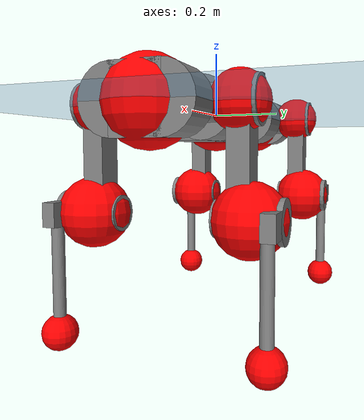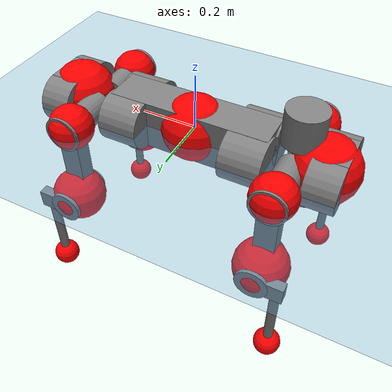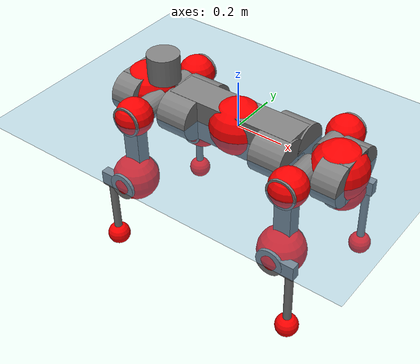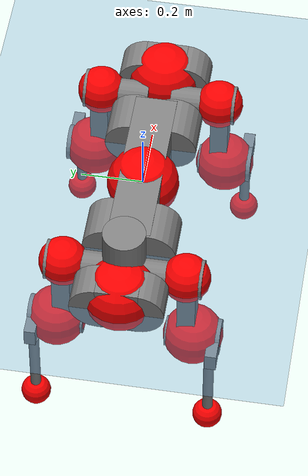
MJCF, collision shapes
<mujoco model="anymal_c">
  <compiler angle="radian" assetdir="assets" balanceinertia="true" inertiafromgeom="false"/>

  <option timestep="0.005" density="1.2" viscosity="2e-05"/>

  <size nkey="1"/>

  <visual>
    <quality shadowsize="8192"/>
    <map shadowclip="0.5"/>
  </visual>

  <default>
    <default class="/">
      <material specular="0" shininess="0.25"/>
      <geom contype="0" conaffinity="0" group="1" solref="-1000 -80"/>
      <site size="0.01 0.005 0.005" group="5"/>
      <general forcelimited="true" forcerange="-80 80" biastype="affine" gainprm="80" biasprm="0 -80 -2"/>
      <default class="anymal_c">
        <joint armature="0.01" damping="0.01" frictionloss="0.1"/>
        <default class="visual">
          <geom type="mesh" group="2"/>
          <default class="visual_zflip"/>
        </default>
        <default class="collision">
          <geom type="cylinder" group="3"/>
          <default class="foot">
            <geom size="0.03 0 0" type="sphere" condim="6" priority="1" friction="0.8 0.02 0.01" solimp="0.015 1 0.03"/>
          </default>
        </default>
      </default>
      <default class="reward_collision_sphere">
        <geom group="5" rgba="1 0 0 1"/>
      </default>
    </default>
  </default>

  <asset>
    <texture type="skybox" colorspace="auto" name="//unnamed_texture_0" builtin="gradient" rgb1="0.95 0.95 0.95" rgb2="0.95 0.95 0.95" width="100" height="600"/>
    <texture type="2d" colorspace="auto" name="texplane" builtin="checker" rgb1="0.345 0.575 0.748" rgb2="0.345 0.575 0.748" markrgb="1 1 1" width="512" height="512"/>
    <texture type="2d" colorspace="linear" name="base" file="base.png"/>
    <texture type="2d" colorspace="linear" name="top_shell" file="top_shell.png"/>
    <texture type="2d" colorspace="linear" name="bottom_shell" file="bottom_shell.png"/>
    <texture type="2d" colorspace="linear" name="remote" file="remote.png"/>
    <texture type="2d" colorspace="linear" name="hatch" file="hatch.png"/>
    <texture type="2d" colorspace="linear" name="handle" file="handle.png"/>
    <texture type="2d" colorspace="linear" name="face" file="face.png"/>
    <texture type="2d" colorspace="linear" name="battery" file="battery.png"/>
    <texture type="2d" colorspace="linear" name="lidar_cage" file="lidar_cage.png"/>
    <texture type="2d" colorspace="linear" name="depth_camera" file="depth_camera.png"/>
    <texture type="2d" colorspace="linear" name="wide_angle_camera" file="wide_angle_camera.png"/>
    <texture type="2d" colorspace="linear" name="lidar" file="lidar.png"/>
    <texture type="2d" colorspace="linear" name="drive" file="drive.png"/>
    <texture type="2d" colorspace="linear" name="hip_l" file="hip_l.png"/>
    <texture type="2d" colorspace="linear" name="shank_l" file="shank_l.png"/>
    <texture type="2d" colorspace="linear" name="foot" file="foot.png"/>
    <texture type="2d" colorspace="linear" name="thigh" file="thigh.png"/>
    <texture type="2d" colorspace="linear" name="shank_r" file="shank_r.png"/>
    <texture type="2d" colorspace="linear" name="hip_r" file="hip_r.png"/>
    <material name="MatPlane" class="/" texture="texplane" texuniform="true" texrepeat="2 2" specular="0.9" shininess="0.5"/>
    <material name="black_plastic" class="/" rgba="0.007 0.007 0.007 1"/>
    <material name="green" class="/" rgba="0.052 0.178 0.033 1"/>
    <material name="red" class="/" rgba="0.178 0.006 0.005 1"/>
    <material name="yellow" class="/" rgba="0.178 0.119 0.006 1"/>
    <material name="lwl" class="/" rgba="0.8 0.8 0.8 1"/>
    <material name="base" class="/" texture="base"/>
    <material name="top_shell" class="/" texture="top_shell"/>
    <material name="bottom_shell" class="/" texture="bottom_shell"/>
    <material name="hip_l" class="/" texture="hip_l"/>
    <material name="thigh" class="/" texture="thigh"/>
    <material name="shank_l" class="/" texture="shank_l"/>
    <material name="foot" class="/" texture="foot"/>
    <material name="hip_r" class="/" texture="hip_r"/>
    <material name="shank" class="/" texture="shank_r"/>
    <material name="hatch" class="/" texture="hatch"/>
    <material name="remote" class="/" texture="remote"/>
    <material name="handle" class="/" texture="handle"/>
    <material name="face" class="/" texture="face"/>
    <material name="depth_camera" class="/" texture="depth_camera"/>
    <material name="wide_angle_camera" class="/" texture="wide_angle_camera"/>
    <material name="battery" class="/" texture="battery"/>
    <material name="lidar_cage" class="/" texture="lidar_cage"/>
    <material name="lidar" class="/" texture="lidar"/>
    <material name="drive" class="/" texture="drive"/>
    <mesh name="base_0" class="/" file="base_0.obj"/>
    <mesh name="base_1" class="/" file="base_1.obj"/>
    <mesh name="base_2" class="/" file="base_2.obj"/>
    <mesh name="base_3" class="/" file="base_3.obj"/>
    <mesh name="base_4" class="/" file="base_4.obj"/>
    <mesh name="base_5" class="/" file="base_5.obj"/>
    <mesh name="top_shell" class="/" file="top_shell.obj"/>
    <mesh name="bottom_shell" class="/" file="bottom_shell.obj"/>
    <mesh name="remote" class="/" file="remote.obj"/>
    <mesh name="handle" class="/" file="handle.obj"/>
    <mesh name="face" class="/" file="face.obj"/>
    <mesh name="wide_angle_camera" class="/" file="wide_angle_camera.obj"/>
    <mesh name="depth_camera" class="/" file="depth_camera.obj"/>
    <mesh name="battery" class="/" file="battery.obj"/>
    <mesh name="lidar_cage" class="/" file="lidar_cage.obj"/>
    <mesh name="lidar" class="/" file="lidar.obj"/>
    <mesh name="drive" class="/" file="drive.obj"/>
    <mesh name="hip_l" class="/" file="hip_l.obj"/>
    <mesh name="thigh" class="/" file="thigh.obj"/>
    <mesh name="shank_l" class="/" file="shank_l.obj"/>
    <mesh name="foot" class="/" file="foot.obj"/>
    <mesh name="hip_r" class="/" file="hip_r.obj"/>
    <mesh name="hatch" class="/" file="hatch.obj"/>
    <mesh name="shank_r" class="/" file="shank_r.obj"/>
  </asset>

  <worldbody>
    <geom name="floor" class="/" size="100 100 0.125" type="plane" group="0" material="MatPlane"/>
    <light name="toplight_shadow" class="/" pos="0 0 5" dir="0.0990148 0.0990148 -0.990148" type="directional" ambient="0.04 0.04 0.04" diffuse="0.55 0.55 0.55" specular="0.12 0.12 0.12"/>
    <light name="toplight_fill" class="/" pos="0 0 5" dir="0.0990148 0.0990148 -0.990148" type="directional" castshadow="false" ambient="0.04 0.04 0.04" diffuse="0.3 0.3 0.3" specular="0.08 0.08 0.08"/>
    <body name="trunk" childclass="anymal_c" pos="0.000164802 -0.000365653 0.000290339" quat="1 0.000201271 5.33822e-05 -8.39538e-05">
      <inertial pos="0.0023373 -0.000487452 0.0502272" quat="0.496481 0.501384 0.499751 0.502364" mass="17.6397" diaginertia="0.688587 0.363601 0.24001"/>
      <joint name="//unnamed_joint_0" type="free" armature="0" damping="0" frictionloss="0"/>
      <geom name="//unnamed_geom_1" class="visual" material="green" mesh="base_0"/>
      <geom name="//unnamed_geom_2" class="visual" material="yellow" mesh="base_1"/>
      <geom name="//unnamed_geom_3" class="visual" material="red" mesh="base_2"/>
      <geom name="//unnamed_geom_4" class="visual" material="black_plastic" mesh="base_3"/>
      <geom name="//unnamed_geom_5" class="visual" material="lwl" mesh="base_4"/>
      <geom name="//unnamed_geom_6" class="visual" material="base" mesh="base_5"/>
      <geom name="trunk_1" class="collision" size="0.283854 0.0685165 0.0880926" type="box"/>
      <geom name="trunk_2" class="collision" size="0.0880926 0.0709635" pos="0.220939 0.0630279 0" quat="0.707107 0 0.707107 0"/>
      <geom name="trunk_3" class="collision" size="0.0880926 0.0709635" pos="-0.220939 0.0630279 0" quat="0.707107 0 0.707107 0"/>
      <geom name="trunk_4" class="collision" size="0.0880926 0.0709635" pos="0.220939 -0.0630279 0" quat="0.707107 0 0.707107 0"/>
      <geom name="trunk_5" class="collision" size="0.0880926 0.0709635" pos="-0.220939 -0.0630279 0" quat="0.707107 0 0.707107 0"/>
      <geom name="//unnamed_geom_12" class="visual" material="top_shell" mesh="top_shell"/>
      <geom name="//unnamed_geom_13" class="visual" material="bottom_shell" mesh="bottom_shell"/>
      <geom name="//unnamed_geom_14" class="visual" material="remote" mesh="remote"/>
      <geom name="//unnamed_geom_15" class="visual" material="handle" mesh="handle"/>
      <geom name="//unnamed_geom_16" class="visual" pos="0.421053 0 0" quat="1 0 0 0" material="face" mesh="face"/>
      <geom name="trunk_6" class="collision" size="0.0538344 0.0685165 0.0880926" pos="0.476923 0 0" type="box"/>
      <geom name="//unnamed_geom_18" class="collision" size="0.0880926 0.0538344" pos="0.476923 0.0630279 0" quat="0.707107 0 0.707107 0"/>
      <geom name="//unnamed_geom_19" class="collision" size="0.0880926 0.0538344" pos="0.476923 -0.0630279 0" quat="0.707107 0 0.707107 0"/>
      <geom name="//unnamed_geom_20" class="visual" pos="0.468949 0 -0.0298236" quat="0.965926 0 0.258819 0" material="depth_camera" mesh="depth_camera"/>
      <geom name="//unnamed_geom_21" class="visual" pos="0.521111 0 0.0152726" material="wide_angle_camera" mesh="wide_angle_camera"/>
      <geom name="//unnamed_geom_22" class="visual_zflip" pos="-0.421053 0 0" quat="0 0 0 1" material="face" mesh="face"/>
      <geom name="trunk_7" class="collision" size="0.0538344 0.0685165 0.0880926" pos="-0.476923 0 0" quat="0 0 0 1" type="box"/>
      <geom name="//unnamed_geom_24" class="collision" size="0.0880926 0.0538344" pos="-0.476923 -0.0630279 0" quat="0 -0.707107 0 0.707107"/>
      <geom name="//unnamed_geom_25" class="collision" size="0.0880926 0.0538344" pos="-0.476923 0.0630279 0" quat="0 -0.707107 0 0.707107"/>
      <geom name="//unnamed_geom_26" class="visual" pos="-0.468949 0 -0.0298236" quat="0 -0.258819 0 0.965926" material="depth_camera" mesh="depth_camera"/>
      <geom name="//unnamed_geom_27" class="visual_zflip" pos="-0.521111 0 0.0152726" quat="0 0 0 1" material="wide_angle_camera" mesh="wide_angle_camera"/>
      <geom name="//unnamed_geom_28" class="visual" material="battery" mesh="battery"/>
      <geom name="//unnamed_geom_29" class="visual" pos="0 0.0673303 0.0296037" quat="0.683013 -0.183013 0.183013 0.683013" material="depth_camera" mesh="depth_camera"/>
      <geom name="//unnamed_geom_30" class="visual" pos="0 -0.0673303 0.0296037" quat="0.683013 0.183013 0.183013 -0.683013" material="depth_camera" mesh="depth_camera"/>
      <geom name="//unnamed_geom_31" class="visual" pos="-0.369755 0 0.0749855" quat="1 0 0 0" material="lidar_cage" mesh="lidar_cage"/>
      <geom name="trunk_8" class="collision" size="0.0685165 0.0587284" pos="-0.369755 0 0.136198"/>
      <geom name="//unnamed_geom_33" class="visual" pos="-0.369755 -4.5342e-05 0.145074" quat="0.707107 0 0 -0.707107" material="lidar" mesh="lidar"/>
      <geom name="//unnamed_geom_34" class="visual" pos="0.304642 0.0936841 -2.06677e-09" quat="0.258819 0.965926 0 0" material="drive" mesh="drive"/>
      <geom name="//unnamed_geom_35" class="visual" pos="0.304642 -0.0936841 2.06677e-09" quat="0.258819 -0.965926 0 0" material="drive" mesh="drive"/>
      <geom name="//unnamed_geom_36" class="visual" pos="-0.304642 0.0936841 2.06677e-09" quat="0 0 0.965926 -0.258819" material="drive" mesh="drive"/>
      <geom name="//unnamed_geom_37" class="visual" pos="-0.304642 -0.0936841 -2.06677e-09" quat="0 0 -0.965926 -0.258819" material="drive" mesh="drive"/>
      <geom name="//unnamed_geom_38" class="visual" pos="0.117834 0 0.0744754" quat="1 0 0 0" material="hatch" mesh="hatch"/>
      <geom name="//unnamed_geom_39" class="reward_collision_sphere" size="0.117457"/>
      <geom name="//unnamed_geom_40" class="reward_collision_sphere" size="0.117457" pos="0.457115 0 0"/>
      <geom name="//unnamed_geom_41" class="reward_collision_sphere" size="0.117457" pos="-0.457115 0 0"/>
      <site name="imu" pos="0.254317 0.00631472 0.0433856" size="0.00978807"/>
      <camera name="track" pos="0 -1.8008 0" quat="0.707107 0.707107 0 0" mode="trackcom"/>
      <camera name="ego_camera" pos="0.457115 0 -0.0408085" quat="-0.5 -0.5 0.5 0.5"/>
      <body name="LF_HIP" pos="0.305539 0.0939834 0.00141965" quat="0.258859 0.965915 -2.05036e-06 -1.71576e-05">
        <inertial pos="0.0571092 -0.0131546 -0.00852231" quat="-0.12811 0.709679 -0.135091 0.679481" mass="2.59693" diaginertia="0.00630851 0.00294343 0.00363991"/>
        <joint name="LF_HAA" pos="0 0 0" axis="0.999958 -0.00908312 0.000816064" range="-0.714871 0.489805" armature="0.00945262" damping="0.0127582" frictionloss="0.0940182"/>
        <geom name="//unnamed_geom_42" class="visual" pos="0 -0.000121579 1.99692e-05" quat="0.258819 -0.965926 0 0" material="hip_l" mesh="hip_l"/>
        <geom name="//unnamed_geom_43" class="visual" pos="0.0608471 -0.0722522 -0.042601" quat="0.183013 -0.683013 0.683013 0.183013" material="drive" mesh="drive"/>
        <geom name="//unnamed_geom_44" class="collision" size="0.0489404 0.0685165" pos="0.0608471 -0.0107686 -0.00704456" quat="-0.353553 -0.612372 0.612372 -0.353553"/>
        <body name="LF_THIGH" pos="0.0621516 -0.0664464 -0.0424496" quat="0.183117 -0.683055 0.683014 0.182744">
          <inertial pos="0.0316991 3.88192e-05 -0.251559" quat="0.993477 -0.00709777 -0.079606 0.0813403" mass="2.87236" diaginertia="0.0327431 0.0177094 0.00463026"/>
          <joint name="LF_HFE" pos="0 0 0" axis="0.999986 0.00136434 -0.00517822" range="-3.14996 3.13961" armature="0.00965716" damping="0.0140144" frictionloss="0.102465"/>
          <geom name="//unnamed_geom_45" class="visual" pos="0.00229623 3.61832e-06 0" quat="0.707107 0 0 -0.707107" material="thigh" mesh="thigh"/>
          <geom name="//unnamed_geom_46" class="collision" size="0.0636225 0.0391523" pos="0.0406324 0 0" quat="0.5 0.5 -0.5 -0.5"/>
          <geom name="//unnamed_geom_47" class="collision" size="0.0367053 0.0293642 0.138319" pos="0.0304743 0 -0.14417" quat="0.707107 0 0 -0.707107" type="box"/>
          <geom name="//unnamed_geom_48" class="visual" pos="0.101886 0 -0.29076" quat="1 0 0 0" material="drive" mesh="drive"/>
          <geom name="//unnamed_geom_49" class="collision" size="0.0489404 0.0685165" pos="0.0307791 0 -0.29076" quat="0.707107 0 0.707107 0"/>
          <geom name="//unnamed_geom_50" class="reward_collision_sphere" size="0.0783046" pos="0.0253953 0 0"/>
          <body name="LF_SHANK" pos="0.102116 -0.00144416 -0.291468" quat="1 -0.00040015 -1.05872e-05 -3.85396e-05">
            <inertial pos="0.0047582 -0.0556206 -0.082279" quat="0.992936 -0.116125 0.00128003 -0.0243397" mass="0.539025" diaginertia="0.0109438 0.00539793 0.00122526"/>
            <joint name="LF_KFE" pos="0 0 0" axis="1 -0.000168032 7.64102e-05" range="-3.13762 3.131" armature="0.00984389" damping="0.0107898" frictionloss="0.0972246"/>
            <geom name="//unnamed_geom_51" class="visual" pos="0.000748751 0.00399238 0" quat="0.707107 0 0 -0.707107" material="shank_l" mesh="shank_l"/>
            <geom name="LF_kfe_act" class="collision" size="0.0587284 0.0195761" pos="0.0203162 0 0" quat="0.5 0.5 -0.5 -0.5"/>
            <geom name="//unnamed_geom_53" class="collision" size="0.0562804 0.0330347 0.0185973" pos="0.0203162 -0.0517721 0" quat="0.5 0.5 -0.5 -0.5" type="box"/>
            <geom name="//unnamed_geom_54" class="visual" pos="0.0132561 -0.0779035 -0.344801" quat="0.382683 0 0 -0.92388" material="foot" mesh="foot"/>
            <geom name="LF_calf" class="collision" size="0.0171291 0.138258" pos="0.0132563 -0.0791901 -0.1724" quat="0.707107 0 0 -0.707107"/>
            <geom name="LF_foot" class="foot" size="0.029476" pos="0.0132563 -0.0791901 -0.321846" quat="0.707107 0 0 -0.707107"/>
            <geom name="//unnamed_geom_57" class="reward_collision_sphere" size="0.0978807" pos="-0.0507905 0 0"/>
            <geom name="//unnamed_geom_58" class="reward_collision_sphere" size="0.0489404" pos="0.0132563 -0.0791901 -0.321846"/>
            <site name="LF_foot" class="foot" pos="0.0132563 -0.0791901 -0.321846" quat="0.707107 0 0 -0.707107" size="0.00978807"/>
          </body>
        </body>
      </body>
      <body name="RF_HIP" pos="0.304382 -0.0931895 0.000564594" quat="0.258912 -0.965901 -0.000323811 -9.60359e-05">
        <inertial pos="0.0585716 0.0142144 -0.00896133" quat="0.134017 0.68148 0.130719 0.707486" mass="2.63817" diaginertia="0.00641381 0.00296749 0.00366333"/>
        <joint name="RF_HAA" pos="0 0 0" axis="0.999997 0.00231395 0.00113965" stiffness="8.26247e-05" range="-0.503383 0.725157" armature="0.00977013" damping="0.0109423" frictionloss="0.0988644"/>
        <geom name="//unnamed_geom_59" class="visual" pos="0 0.000121578 1.99692e-05" quat="0.258819 0.965926 0 0" material="hip_r" mesh="hip_r"/>
        <geom name="//unnamed_geom_60" class="visual" pos="0.0608471 0.0722522 -0.042601" quat="0.183013 0.683013 0.683013 -0.183013" material="drive" mesh="drive"/>
        <geom name="//unnamed_geom_61" class="collision" size="0.0489404 0.0685165" pos="0.0608471 0.0107686 -0.00704456" quat="-0.353553 0.612372 0.612372 0.353553"/>
        <body name="RF_THIGH" pos="0.0610098 0.0659156 -0.0438451" quat="0.183063 0.683153 0.682941 -0.182709">
          <inertial pos="0.0322237 0.00119627 -0.25008" quat="0.992819 -0.00543606 -0.0805356 0.0882928" mass="2.87932" diaginertia="0.0325311 0.017776 0.00462061"/>
          <joint name="RF_HFE" pos="0 0 0" axis="0.999995 -0.00287751 -0.00123132" stiffness="0.00679499" range="-3.14524 3.12219" armature="0.00965028" damping="0.00938609" frictionloss="0.100312"/>
          <geom name="//unnamed_geom_62" class="visual" pos="0.00229623 3.61832e-06 0" quat="0.707107 0 0 -0.707107" material="thigh" mesh="thigh"/>
          <geom name="//unnamed_geom_63" class="collision" size="0.0636225 0.0391523" pos="0.0406324 0 0" quat="0.5 0.5 0.5 0.5"/>
          <geom name="//unnamed_geom_64" class="collision" size="0.0367053 0.0293642 0.138319" pos="0.0304743 0 -0.14417" quat="0.707107 0 0 0.707107" type="box"/>
          <geom name="//unnamed_geom_65" class="visual" pos="0.101886 0 -0.29076" quat="1 0 0 0" material="drive" mesh="drive"/>
          <geom name="//unnamed_geom_66" class="collision" size="0.0489404 0.0685165" pos="0.0307791 0 -0.29076" quat="0.707107 0 0.707107 0"/>
          <geom name="//unnamed_geom_67" class="reward_collision_sphere" size="0.0783046" pos="0.0253953 0 0"/>
          <body name="RF_SHANK" pos="0.101204 0.000193198 -0.290975" quat="1 0.000328507 -0.000366838 7.20618e-05">
            <inertial pos="0.00714177 0.0560789 -0.0822345" quat="0.993046 0.114549 -0.00205679 0.0270895" mass="0.550689" diaginertia="0.0108299 0.00543926 0.00124576"/>
            <joint name="RF_KFE" pos="0 0 0" axis="0.999999 -0.00164251 0.000235167" range="-3.14352 3.14299" armature="0.00994257" damping="0.0102987" frictionloss="0.0982302"/>
            <geom name="//unnamed_geom_68" class="visual" pos="0.000748747 -0.00399237 0" quat="0.707107 0 0 0.707107" material="shank" mesh="shank_r"/>
            <geom name="RF_kfe_act" class="collision" size="0.0587284 0.0195761" pos="0.0203162 0 0" quat="0.5 0.5 0.5 0.5"/>
            <geom name="//unnamed_geom_70" class="collision" size="0.0562804 0.0330347 0.0185973" pos="0.0203162 0.0517721 0" quat="0.5 0.5 0.5 0.5" type="box"/>
            <geom name="//unnamed_geom_71" class="visual" pos="0.0132565 0.0779035 -0.344801" quat="0.382683 0 0 0.92388" material="foot" mesh="foot"/>
            <geom name="RF_calf" class="collision" size="0.0171291 0.138258" pos="0.0132563 0.0791901 -0.1724" quat="0.707107 0 0 0.707107"/>
            <geom name="RF_foot" class="foot" size="0.0298069" pos="0.0132563 0.0791901 -0.321846" quat="0.707107 0 0 0.707107"/>
            <geom name="//unnamed_geom_74" class="reward_collision_sphere" size="0.0978807" pos="-0.0507905 0 0"/>
            <geom name="//unnamed_geom_75" class="reward_collision_sphere" size="0.0489404" pos="0.0132563 0.0791901 -0.321846"/>
            <site name="RF_foot" class="foot" pos="0.0132563 0.0791901 -0.321846" quat="0.707107 0 0 0.707107" size="0.00978807"/>
          </body>
        </body>
      </body>
      <body name="LH_HIP" pos="-0.302604 0.0940592 0.000512213" quat="-0.000121489 -4.88229e-05 0.9659 -0.258915">
        <inertial pos="0.0583386 0.01227 -0.00863469" quat="0.13524 0.679072 0.127993 0.710063" mass="2.63495" diaginertia="0.00631401 0.00291763 0.0036435"/>
        <joint name="LH_HAA" pos="0 0 0" axis="0.999996 0.00236344 -0.00138045" stiffness="0.000169932" range="-0.510452 0.713468" armature="0.00979014" damping="0.00941977" frictionloss="0.098402"/>
        <geom name="//unnamed_geom_76" class="visual" pos="0 0.000121578 1.99692e-05" quat="-0.258819 -0.965926 0 0" material="hip_r" mesh="hip_r"/>
        <geom name="//unnamed_geom_77" class="visual" pos="0.0608471 0.0722522 -0.042601" quat="0.183013 0.683013 0.683013 -0.183013" material="drive" mesh="drive"/>
        <geom name="//unnamed_geom_78" class="collision" size="0.0489404 0.0685165" pos="0.0608471 0.0107686 -0.00704456" quat="-0.353553 0.612372 0.612372 0.353553"/>
        <body name="LH_THIGH" pos="0.059529 0.0647911 -0.0435982" quat="0.182989 0.682962 0.683056 -0.183063">
          <inertial pos="0.0318785 0.000623955 -0.250804" quat="0.992887 -0.00721699 -0.0791028 0.0886862" mass="2.87131" diaginertia="0.0327589 0.0174601 0.00451997"/>
          <joint name="LH_HFE" pos="0 0 0" axis="1 -0.000344562 -4.29032e-05" range="-3.15806 3.12165" armature="0.00999029" damping="0.00805702" frictionloss="0.0970877"/>
          <geom name="//unnamed_geom_79" class="visual" pos="0.00229623 3.61832e-06 0" quat="0.707107 0 0 -0.707107" material="thigh" mesh="thigh"/>
          <geom name="//unnamed_geom_80" class="collision" size="0.0636225 0.0391523" pos="0.0406324 0 0" quat="0.5 0.5 -0.5 -0.5"/>
          <geom name="//unnamed_geom_81" class="collision" size="0.0367053 0.0293642 0.138319" pos="0.0304743 0 -0.14417" quat="0.707107 0 0 -0.707107" type="box"/>
          <geom name="//unnamed_geom_82" class="visual" pos="0.101886 0 -0.29076" quat="1 0 0 0" material="drive" mesh="drive"/>
          <geom name="//unnamed_geom_83" class="collision" size="0.0489404 0.0685165" pos="0.0307791 0 -0.29076" quat="0.707107 0 0.707107 0"/>
          <geom name="//unnamed_geom_84" class="reward_collision_sphere" size="0.0783046" pos="0.0253953 0 0"/>
          <body name="LH_SHANK" pos="0.102772 -0.00105267 -0.292112" quat="1 0.000537213 0.000231742 -0.000372365">
            <inertial pos="0.00548477 0.0550518 -0.0809113" quat="0.993328 0.112137 0.00091571 0.0268933" mass="0.549826" diaginertia="0.0109975 0.00551646 0.00123776"/>
            <joint name="LH_KFE" pos="0 0 0" axis="0.999986 -0.00323704 -0.00425607" range="-3.13435 3.15838" armature="0.0100359" damping="0.0100294" frictionloss="0.100247"/>
            <geom name="//unnamed_geom_85" class="visual" pos="0.000748747 -0.00399237 0" quat="-0.707107 0 0 -0.707107" material="shank" mesh="shank_r"/>
            <geom name="LH_kfe_act" class="collision" size="0.0587284 0.0195761" pos="0.0203162 0 0" quat="0.5 0.5 -0.5 -0.5"/>
            <geom name="//unnamed_geom_87" class="collision" size="0.0562804 0.0330347 0.0185973" pos="0.0203162 0.0517721 0" quat="0.5 0.5 -0.5 -0.5" type="box"/>
            <geom name="//unnamed_geom_88" class="visual" pos="0.0132565 0.0779035 -0.344801" quat="-0.382683 0 0 -0.92388" material="foot" mesh="foot"/>
            <geom name="LH_calf" class="collision" size="0.0171291 0.138258" pos="0.0132563 0.0791901 -0.1724" quat="0.707107 0 0 -0.707107"/>
            <geom name="LH_foot" class="foot" size="0.0313111" pos="0.0132563 0.0791901 -0.321846" quat="0.707107 0 0 -0.707107"/>
            <geom name="//unnamed_geom_91" class="reward_collision_sphere" size="0.0978807" pos="-0.0507905 0 0"/>
            <geom name="//unnamed_geom_92" class="reward_collision_sphere" size="0.0489404" pos="0.0132563 0.0791901 -0.321846"/>
            <site name="LH_foot" class="foot" pos="0.0132563 0.0791901 -0.321846" quat="0.707107 0 0 -0.707107" size="0.00978807"/>
          </body>
        </body>
      </body>
      <body name="RH_HIP" pos="-0.305342 -0.0939337 -5.81003e-05" quat="-0.000182885 -0.000130566 -0.965911 -0.258874">
        <inertial pos="0.0568784 -0.0147184 -0.00878392" quat="-0.127038 0.707607 -0.134877 0.681881" mass="2.5902" diaginertia="0.00622378 0.00286153 0.00357369"/>
        <joint name="RH_HAA" pos="0 0 0" axis="0.999983 0.00221679 -0.00545862" range="-0.720682 0.490082" armature="0.00978334" damping="0.00685377" frictionloss="0.0984357"/>
        <geom name="//unnamed_geom_93" class="visual" pos="0 -0.000121579 1.99692e-05" quat="-0.258819 0.965926 0 0" material="hip_l" mesh="hip_l"/>
        <geom name="//unnamed_geom_94" class="visual" pos="0.0608471 -0.0722522 -0.042601" quat="-0.183013 0.683013 -0.683013 -0.183013" material="drive" mesh="drive"/>
        <geom name="//unnamed_geom_95" class="collision" size="0.0489404 0.0685165" pos="0.0608471 -0.0107686 -0.00704456" quat="0.353553 0.612372 -0.612372 0.353553"/>
        <body name="RH_THIGH" pos="0.061148 -0.0651068 -0.0427839" quat="-0.18301 0.683002 -0.683024 -0.183012">
          <inertial pos="0.0318206 0.000190673 -0.250439" quat="0.992633 -0.00196526 -0.0830346 0.0882089" mass="2.87114" diaginertia="0.032895 0.0176821 0.00470522"/>
          <joint name="RH_HFE" pos="0 0 0" axis="0.999996 0.00130195 0.00247209" range="-3.13617 3.13597" armature="0.00970448" damping="0.00563047" frictionloss="0.101914"/>
          <geom name="//unnamed_geom_96" class="visual" pos="0.00229623 3.61832e-06 0" quat="0.707107 0 0 -0.707107" material="thigh" mesh="thigh"/>
          <geom name="//unnamed_geom_97" class="collision" size="0.0636225 0.0391523" pos="0.0406324 0 0" quat="0.5 0.5 0.5 0.5"/>
          <geom name="//unnamed_geom_98" class="collision" size="0.0367053 0.0293642 0.138319" pos="0.0304743 0 -0.14417" quat="0.707107 0 0 0.707107" type="box"/>
          <geom name="//unnamed_geom_99" class="visual" pos="0.101886 0 -0.29076" quat="1 0 0 0" material="drive" mesh="drive"/>
          <geom name="//unnamed_geom_100" class="collision" size="0.0489404 0.0685165" pos="0.0307791 0 -0.29076" quat="0.707107 0 0.707107 0"/>
          <geom name="//unnamed_geom_101" class="reward_collision_sphere" size="0.0783046" pos="0.0253953 0 0"/>
          <body name="RH_SHANK" pos="0.10141 0.000474478 -0.290912" quat="1 -3.96324e-05 0.0001219 -0.000244703">
            <inertial pos="0.00556605 -0.0559167 -0.0817696" quat="0.993042 -0.114815 -0.000179936 -0.0261789" mass="0.551403" diaginertia="0.0111252 0.00547172 0.00123793"/>
            <joint name="RH_KFE" pos="0 0 0" axis="0.999995 0.000485881 -0.00326506" range="-3.1333 3.14643" armature="0.00981677" damping="0.0109282" frictionloss="0.101296"/>
            <geom name="//unnamed_geom_102" class="visual" pos="0.000748751 0.00399238 0" quat="0.707107 0 0 -0.707107" material="shank_l" mesh="shank_l"/>
            <geom name="RH_kfe_act" class="collision" size="0.0587284 0.0195761" pos="0.0203162 0 0" quat="0.5 0.5 0.5 0.5"/>
            <geom name="//unnamed_geom_104" class="collision" size="0.0562804 0.0330347 0.0185973" pos="0.0203162 -0.0517721 0" quat="0.5 0.5 0.5 0.5" type="box"/>
            <geom name="//unnamed_geom_105" class="visual" pos="0.0132561 -0.0779035 -0.344801" quat="0.382683 0 0 -0.92388" material="foot" mesh="foot"/>
            <geom name="RH_calf" class="collision" size="0.0171291 0.138258" pos="0.0132563 -0.0791901 -0.1724" quat="0.707107 0 0 0.707107"/>
            <geom name="RH_foot" class="foot" size="0.0274383" pos="0.0132563 -0.0791901 -0.321846" quat="0.707107 0 0 0.707107"/>
            <geom name="//unnamed_geom_108" class="reward_collision_sphere" size="0.0978807" pos="-0.0507905 0 0"/>
            <geom name="//unnamed_geom_109" class="reward_collision_sphere" size="0.0489404" pos="0.0132563 -0.0791901 -0.321846"/>
            <site name="RH_foot" class="foot" pos="0.0132563 -0.0791901 -0.321846" quat="0.707107 0 0 0.707107" size="0.00978807"/>
          </body>
        </body>
      </body>
    </body>
  </worldbody>

  <contact>
    <pair class="/" geom1="floor" geom2="LF_foot" name="//unnamed_contact_0"/>
    <pair class="/" geom1="floor" geom2="RF_foot" name="//unnamed_contact_1"/>
    <pair class="/" geom1="floor" geom2="LH_foot" name="//unnamed_contact_2"/>
    <pair class="/" geom1="floor" geom2="RH_foot" name="//unnamed_contact_3"/>
  </contact>

  <actuator>
    <general name="LF_HAA" class="/" joint="LF_HAA" forcerange="-79.2904 79.2904" gainprm="79.1439" biasprm="0 -79.1439 -1.88291"/>
    <general name="LF_HFE" class="/" joint="LF_HFE" forcerange="-79.0766 79.0766" gainprm="79.1439" biasprm="0 -79.1439 -1.88291"/>
    <general name="LF_KFE" class="/" joint="LF_KFE" forcerange="-76.4616 76.4616" gainprm="79.1439" biasprm="0 -79.1439 -1.88291"/>
    <general name="RF_HAA" class="/" joint="RF_HAA" forcerange="-78.6229 78.6229" gainprm="79.1439" biasprm="0 -79.1439 -1.88291"/>
    <general name="RF_HFE" class="/" joint="RF_HFE" forcerange="-81.1978 81.1978" gainprm="79.1439" biasprm="0 -79.1439 -1.88291"/>
    <general name="RF_KFE" class="/" joint="RF_KFE" forcerange="-75.7509 75.7509" gainprm="79.1439" biasprm="0 -79.1439 -1.88291"/>
    <general name="LH_HAA" class="/" joint="LH_HAA" forcerange="-78.9649 78.9649" gainprm="79.1439" biasprm="0 -79.1439 -1.88291"/>
    <general name="LH_HFE" class="/" joint="LH_HFE" forcerange="-76.085 76.085" gainprm="79.1439" biasprm="0 -79.1439 -1.88291"/>
    <general name="LH_KFE" class="/" joint="LH_KFE" forcerange="-81.4711 81.4711" gainprm="79.1439" biasprm="0 -79.1439 -1.88291"/>
    <general name="RH_HAA" class="/" joint="RH_HAA" forcerange="-79.0357 79.0357" gainprm="79.1439" biasprm="0 -79.1439 -1.88291"/>
    <general name="RH_HFE" class="/" joint="RH_HFE" forcerange="-78.1889 78.1889" gainprm="79.1439" biasprm="0 -79.1439 -1.88291"/>
    <general name="RH_KFE" class="/" joint="RH_KFE" forcerange="-75.4551 75.4551" gainprm="79.1439" biasprm="0 -79.1439 -1.88291"/>
  </actuator>

  <sensor>
    <gyro site="imu" name="imu_angular_velocity"/>
    <velocimeter site="imu" name="imu_linear_velocity"/>
    <framelinvel objtype="site" objname="LF_foot" name="LF_foot_global_linear_velocity"/>
    <framelinvel objtype="site" objname="RF_foot" name="RF_foot_global_linear_velocity"/>
    <framelinvel objtype="site" objname="LH_foot" name="LH_foot_global_linear_velocity"/>
    <framelinvel objtype="site" objname="RH_foot" name="RH_foot_global_linear_velocity"/>
  </sensor>

  <keyframe>
    <key name="home" qpos="0 0 0.55 1 0 0 0 0 0.4 -0.8 0 -0.4 0.8 0 -0.4 0.8 0 0.4 -0.8"/>
  </keyframe>
</mujoco>
